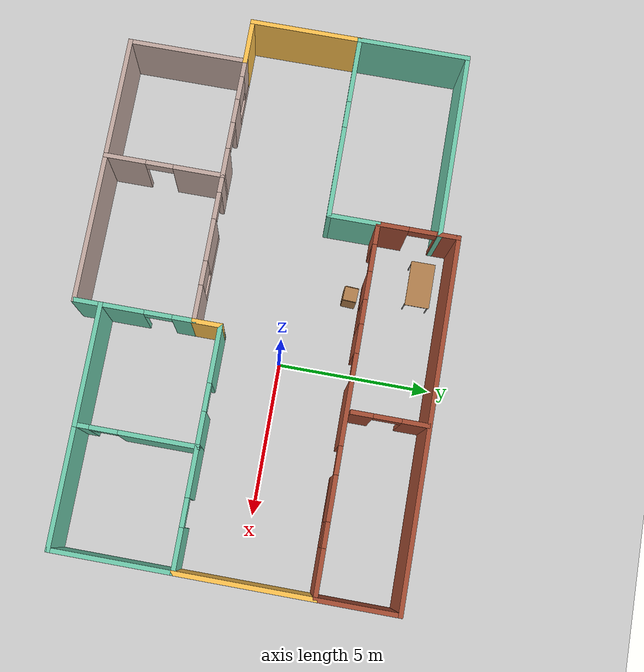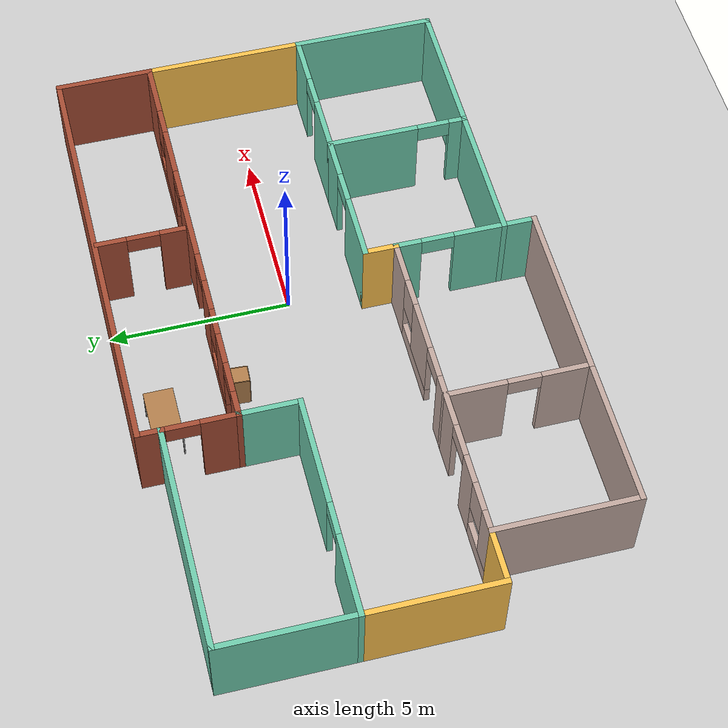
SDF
<sdf version="1.6">
 <world name="default">
  <model name="ground_plane">
   <static>1</static>
   <link name="link">
    <collision name="collision">
     <geometry><plane><normal>0 0 1</normal><size>100 100</size></plane></geometry>
     <surface><friction><ode><mu>100</mu><mu2>50</mu2></ode></friction></surface>
    </collision>
    <visual name="visual">
     <cast_shadows>0</cast_shadows>
     <geometry><plane><normal>0 0 1</normal><size>100 100</size></plane></geometry>
     <material>
      <script><uri>file://media/materials/scripts/gazebo.material</uri><name>Gazebo/Grey</name></script>
     </material>
    </visual>
   </link>
  </model>
  <model name="model_0">
   <pose>-1.81997 -0.88196 0 0 -0 0</pose>
   <link name="Wall_13">
    <pose>-3.575 -3.9 0 0 0 -1.5708</pose>
    <visual name="Wall_13_Visual_0">
     <pose>-1.14969 0 1.25 0 -0 0</pose>
     <geometry><box><size>1.70063 0.15 2.5</size></box></geometry>
     <material>
      <script><uri>file://media/materials/scripts/gazebo.material</uri><name>Gazebo/Grey</name></script>
      <ambient>0.760784 0.662745 0.627451 1</ambient>
     </material>
     <meta><layer>0</layer></meta>
    </visual>
    <collision name="Wall_13_Collision_0">
     <geometry><box><size>1.70063 0.15 2.5</size></box></geometry>
     <pose>-1.14969 0 1.25 0 -0 0</pose>
    </collision>
    <visual name="Wall_13_Visual_1">
     <pose>1.30032 0 1.25 0 -0 0</pose>
     <geometry><box><size>1.39937 0.15 2.5</size></box></geometry>
     <material>
      <script><uri>file://media/materials/scripts/gazebo.material</uri><name>Gazebo/Grey</name></script>
      <ambient>0.760784 0.662745 0.627451 1</ambient>
     </material>
     <meta><layer>0</layer></meta>
    </visual>
    <collision name="Wall_13_Collision_1">
     <geometry><box><size>1.39937 0.15 2.5</size></box></geometry>
     <pose>1.30032 0 1.25 0 -0 0</pose>
    </collision>
    <visual name="Wall_13_Visual_2">
     <pose>0.15063 0 2.25 0 -0 0</pose>
     <geometry><box><size>0.9 0.15 0.5</size></box></geometry>
     <material>
      <script><uri>file://media/materials/scripts/gazebo.material</uri><name>Gazebo/Grey</name></script>
      <ambient>0.760784 0.662745 0.627451 1</ambient>
     </material>
     <meta><layer>0</layer></meta>
    </visual>
    <collision name="Wall_13_Collision_2">
     <geometry><box><size>0.9 0.15 0.5</size></box></geometry>
     <pose>0.15063 0 2.25 0 -0 0</pose>
    </collision>
   </link>
   <link name="Wall_14">
    <collision name="Wall_14_Collision">
     <geometry><box><size>5 0.15 2.5</size></box></geometry>
     <pose>0 0 1.25 0 -0 0</pose>
    </collision>
    <visual name="Wall_14_Visual">
     <pose>0 0 1.25 0 -0 0</pose>
     <geometry><box><size>5 0.15 2.5</size></box></geometry>
     <material>
      <script><uri>file://media/materials/scripts/gazebo.material</uri><name>Gazebo/Grey</name></script>
      <ambient>0.760784 0.662745 0.627451 1</ambient>
     </material>
     <meta><layer>0</layer></meta>
    </visual>
    <pose>-1.15 -5.825 0 0 -0 0</pose>
   </link>
   <link name="Wall_15">
    <pose>1.275 -3.9 0 0 -0 1.5708</pose>
    <visual name="Wall_15_Visual_0">
     <pose>-0.837703 0 1.25 0 -0 0</pose>
     <geometry><box><size>2.32459 0.15 2.5</size></box></geometry>
     <material>
      <script><uri>file://media/materials/scripts/gazebo.material</uri><name>Gazebo/Grey</name></script>
      <ambient>0.435294 0.796078 0.67451 1</ambient>
     </material>
     <meta><layer>0</layer></meta>
    </visual>
    <collision name="Wall_15_Collision_0">
     <geometry><box><size>2.32459 0.15 2.5</size></box></geometry>
     <pose>-0.837703 0 1.25 0 -0 0</pose>
    </collision>
    <visual name="Wall_15_Visual_1">
     <pose>1.6123 0 1.25 0 -0 0</pose>
     <geometry><box><size>0.775406 0.15 2.5</size></box></geometry>
     <material>
      <script><uri>file://media/materials/scripts/gazebo.material</uri><name>Gazebo/Grey</name></script>
      <ambient>0.435294 0.796078 0.67451 1</ambient>
     </material>
     <meta><layer>0</layer></meta>
    </visual>
    <collision name="Wall_15_Collision_1">
     <geometry><box><size>0.775406 0.15 2.5</size></box></geometry>
     <pose>1.6123 0 1.25 0 -0 0</pose>
    </collision>
    <visual name="Wall_15_Visual_2">
     <pose>0.774594 0 2.25 0 -0 0</pose>
     <geometry><box><size>0.9 0.15 0.5</size></box></geometry>
     <material>
      <script><uri>file://media/materials/scripts/gazebo.material</uri><name>Gazebo/Grey</name></script>
      <ambient>0.435294 0.796078 0.67451 1</ambient>
     </material>
     <meta><layer>0</layer></meta>
    </visual>
    <collision name="Wall_15_Collision_2">
     <geometry><box><size>0.9 0.15 0.5</size></box></geometry>
     <pose>0.774594 0 2.25 0 -0 0</pose>
    </collision>
   </link>
   <link name="Wall_16">
    <pose>-3.15 -1.975 0 0 -0 3.14159</pose>
    <visual name="Wall_16_Visual_0">
     <pose>-3.87671 0 1.25 0 -0 0</pose>
     <geometry><box><size>1.24658 0.15 2.5</size></box></geometry>
     <material>
      <script><uri>file://media/materials/scripts/gazebo.material</uri><name>Gazebo/Grey</name></script>
      <ambient>0.760784 0.662745 0.627451 1</ambient>
     </material>
     <meta><layer>0</layer></meta>
    </visual>
    <collision name="Wall_16_Collision_0">
     <geometry><box><size>1.24658 0.15 2.5</size></box></geometry>
     <pose>-3.87671 0 1.25 0 -0 0</pose>
    </collision>
    <visual name="Wall_16_Visual_1">
     <pose>0.598963 0 1.25 0 -0 0</pose>
     <geometry><box><size>1.50298 0.15 2.5</size></box></geometry>
     <material>
      <script><uri>file://media/materials/scripts/gazebo.material</uri><name>Gazebo/Grey</name></script>
      <ambient>0.760784 0.662745 0.627451 1</ambient>
     </material>
     <meta><layer>0</layer></meta>
    </visual>
    <collision name="Wall_16_Collision_1">
     <geometry><box><size>1.50298 0.15 2.5</size></box></geometry>
     <pose>0.598963 0 1.25 0 -0 0</pose>
    </collision>
    <visual name="Wall_16_Visual_2">
     <pose>2.65433 0 1.25 0 -0 0</pose>
     <geometry><box><size>0.807753 0.15 2.5</size></box></geometry>
     <material>
      <script><uri>file://media/materials/scripts/gazebo.material</uri><name>Gazebo/Grey</name></script>
      <ambient>0.760784 0.662745 0.627451 1</ambient>
     </material>
     <meta><layer>0</layer></meta>
    </visual>
    <collision name="Wall_16_Collision_2">
     <geometry><box><size>0.807753 0.15 2.5</size></box></geometry>
     <pose>2.65433 0 1.25 0 -0 0</pose>
    </collision>
    <visual name="Wall_16_Visual_3">
     <pose>-2.15298 0 0.25 0 -0 0</pose>
     <geometry><box><size>2.2009 0.15 0.5</size></box></geometry>
     <material>
      <script><uri>file://media/materials/scripts/gazebo.material</uri><name>Gazebo/Grey</name></script>
      <ambient>0.760784 0.662745 0.627451 1</ambient>
     </material>
     <meta><layer>0</layer></meta>
    </visual>
    <collision name="Wall_16_Collision_3">
     <geometry><box><size>2.2009 0.15 0.5</size></box></geometry>
     <pose>-2.15298 0 0.25 0 -0 0</pose>
    </collision>
    <visual name="Wall_16_Visual_4">
     <pose>3.7791 0 0.25 0 -0 0</pose>
     <geometry><box><size>1.44179 0.15 0.5</size></box></geometry>
     <material>
      <script><uri>file://media/materials/scripts/gazebo.material</uri><name>Gazebo/Grey</name></script>
      <ambient>0.760784 0.662745 0.627451 1</ambient>
     </material>
     <meta><layer>0</layer></meta>
    </visual>
    <collision name="Wall_16_Collision_4">
     <geometry><box><size>1.44179 0.15 0.5</size></box></geometry>
     <pose>3.7791 0 0.25 0 -0 0</pose>
    </collision>
    <visual name="Wall_16_Visual_5">
     <pose>-1.75298 0 1.5 0 -0 0</pose>
     <geometry><box><size>1.4009 0.15 2</size></box></geometry>
     <material>
      <script><uri>file://media/materials/scripts/gazebo.material</uri><name>Gazebo/Grey</name></script>
      <ambient>0.760784 0.662745 0.627451 1</ambient>
     </material>
     <meta><layer>0</layer></meta>
    </visual>
    <collision name="Wall_16_Collision_5">
     <geometry><box><size>1.4009 0.15 2</size></box></geometry>
     <pose>-1.75298 0 1.5 0 -0 0</pose>
    </collision>
    <visual name="Wall_16_Visual_6">
     <pose>-1.75298 0 1.5 0 -0 0</pose>
     <geometry><box><size>1.4009 0.15 2</size></box></geometry>
     <material>
      <script><uri>file://media/materials/scripts/gazebo.material</uri><name>Gazebo/Grey</name></script>
      <ambient>0.760784 0.662745 0.627451 1</ambient>
     </material>
     <meta><layer>0</layer></meta>
    </visual>
    <collision name="Wall_16_Collision_6">
     <geometry><box><size>1.4009 0.15 2</size></box></geometry>
     <pose>-1.75298 0 1.5 0 -0 0</pose>
    </collision>
    <visual name="Wall_16_Visual_7">
     <pose>4.1791 0 1.5 0 -0 0</pose>
     <geometry><box><size>0.641792 0.15 2</size></box></geometry>
     <material>
      <script><uri>file://media/materials/scripts/gazebo.material</uri><name>Gazebo/Grey</name></script>
      <ambient>0.760784 0.662745 0.627451 1</ambient>
     </material>
     <meta><layer>0</layer></meta>
    </visual>
    <collision name="Wall_16_Collision_7">
     <geometry><box><size>0.641792 0.15 2</size></box></geometry>
     <pose>4.1791 0 1.5 0 -0 0</pose>
    </collision>
    <visual name="Wall_16_Visual_8">
     <pose>-2.85342 0 1.9 0 -0 0</pose>
     <geometry><box><size>0.8 0.15 1.2</size></box></geometry>
     <material>
      <script><uri>file://media/materials/scripts/gazebo.material</uri><name>Gazebo/Grey</name></script>
      <ambient>0.760784 0.662745 0.627451 1</ambient>
     </material>
     <meta><layer>0</layer></meta>
    </visual>
    <collision name="Wall_16_Collision_8">
     <geometry><box><size>0.8 0.15 1.2</size></box></geometry>
     <pose>-2.85342 0 1.9 0 -0 0</pose>
    </collision>
    <visual name="Wall_16_Visual_9">
     <pose>3.45821 0 1.9 0 -0 0</pose>
     <geometry><box><size>0.8 0.15 1.2</size></box></geometry>
     <material>
      <script><uri>file://media/materials/scripts/gazebo.material</uri><name>Gazebo/Grey</name></script>
      <ambient>0.760784 0.662745 0.627451 1</ambient>
     </material>
     <meta><layer>0</layer></meta>
    </visual>
    <collision name="Wall_16_Collision_9">
     <geometry><box><size>0.8 0.15 1.2</size></box></geometry>
     <pose>3.45821 0 1.9 0 -0 0</pose>
    </collision>
    <visual name="Wall_16_Visual_10">
     <pose>1.80045 0 2.25 0 -0 0</pose>
     <geometry><box><size>0.9 0.15 0.5</size></box></geometry>
     <material>
      <script><uri>file://media/materials/scripts/gazebo.material</uri><name>Gazebo/Grey</name></script>
      <ambient>0.760784 0.662745 0.627451 1</ambient>
     </material>
     <meta><layer>0</layer></meta>
    </visual>
    <collision name="Wall_16_Collision_10">
     <geometry><box><size>0.9 0.15 0.5</size></box></geometry>
     <pose>1.80045 0 2.25 0 -0 0</pose>
    </collision>
    <visual name="Wall_16_Visual_11">
     <pose>-0.602528 0 2.25 0 -0 0</pose>
     <geometry><box><size>0.9 0.15 0.5</size></box></geometry>
     <material>
      <script><uri>file://media/materials/scripts/gazebo.material</uri><name>Gazebo/Grey</name></script>
      <ambient>0.760784 0.662745 0.627451 1</ambient>
     </material>
     <meta><layer>0</layer></meta>
    </visual>
    <collision name="Wall_16_Collision_11">
     <geometry><box><size>0.9 0.15 0.5</size></box></geometry>
     <pose>-0.602528 0 2.25 0 -0 0</pose>
    </collision>
    <visual name="Wall_16_Visual_12">
     <pose>-0.602528 0 2.25 0 -0 0</pose>
     <geometry><box><size>0.9 0.15 0.5</size></box></geometry>
     <material>
      <script><uri>file://media/materials/scripts/gazebo.material</uri><name>Gazebo/Grey</name></script>
      <ambient>0.760784 0.662745 0.627451 1</ambient>
     </material>
     <meta><layer>0</layer></meta>
    </visual>
    <collision name="Wall_16_Collision_12">
     <geometry><box><size>0.9 0.15 0.5</size></box></geometry>
     <pose>-0.602528 0 2.25 0 -0 0</pose>
    </collision>
   </link>
   <link name="Wall_17">
    <collision name="Wall_17_Collision">
     <geometry><box><size>4 0.15 2.5</size></box></geometry>
     <pose>0 0 1.25 0 -0 0</pose>
    </collision>
    <visual name="Wall_17_Visual">
     <pose>0 0 1.25 0 -0 0</pose>
     <geometry><box><size>4 0.15 2.5</size></box></geometry>
     <material>
      <script><uri>file://media/materials/scripts/gazebo.material</uri><name>Gazebo/Grey</name></script>
      <ambient>0.760784 0.662745 0.627451 1</ambient>
     </material>
     <meta><layer>0</layer></meta>
    </visual>
    <pose>-7.575 -3.9 0 0 0 -1.5708</pose>
   </link>
   <link name="Wall_18">
    <collision name="Wall_18_Collision">
     <geometry><box><size>4 0.15 2.5</size></box></geometry>
     <pose>0 0 1.25 0 -0 0</pose>
    </collision>
    <visual name="Wall_18_Visual">
     <pose>0 0 1.25 0 -0 0</pose>
     <geometry><box><size>4 0.15 2.5</size></box></geometry>
     <material>
      <script><uri>file://media/materials/scripts/gazebo.material</uri><name>Gazebo/Grey</name></script>
      <ambient>0.760784 0.662745 0.627451 1</ambient>
     </material>
     <meta><layer>0</layer></meta>
    </visual>
    <pose>-5.65 -5.825 0 0 -0 0</pose>
   </link>
   <link name="Wall_27">
    <collision name="Wall_27_Collision">
     <geometry><box><size>1 0.15 2.5</size></box></geometry>
     <pose>0 0 1.25 0 -0 0</pose>
    </collision>
    <visual name="Wall_27_Visual">
     <pose>0 0 1.25 0 -0 0</pose>
     <geometry><box><size>1 0.15 2.5</size></box></geometry>
     <material>
      <script><uri>file://media/materials/scripts/gazebo.material</uri><name>Gazebo/Grey</name></script>
      <ambient>1 0.764706 0.305882 1</ambient>
     </material>
     <meta><layer>0</layer></meta>
    </visual>
    <pose>1.275 -1.55 0 0 -0 1.5708</pose>
   </link>
   <link name="Wall_28">
    <pose>3.2 -1.125 0 0 -0 0</pose>
    <visual name="Wall_28_Visual_0">
     <pose>-1.04345 0 1.25 0 -0 0</pose>
     <geometry><box><size>1.9131 0.15 2.5</size></box></geometry>
     <material>
      <script><uri>file://media/materials/scripts/gazebo.material</uri><name>Gazebo/Grey</name></script>
      <ambient>0.435294 0.796078 0.67451 1</ambient>
     </material>
     <meta><layer>0</layer></meta>
    </visual>
    <collision name="Wall_28_Collision_0">
     <geometry><box><size>1.9131 0.15 2.5</size></box></geometry>
     <pose>-1.04345 0 1.25 0 -0 0</pose>
    </collision>
    <visual name="Wall_28_Visual_1">
     <pose>1.40655 0 1.25 0 -0 0</pose>
     <geometry><box><size>1.1869 0.15 2.5</size></box></geometry>
     <material>
      <script><uri>file://media/materials/scripts/gazebo.material</uri><name>Gazebo/Grey</name></script>
      <ambient>0.435294 0.796078 0.67451 1</ambient>
     </material>
     <meta><layer>0</layer></meta>
    </visual>
    <collision name="Wall_28_Collision_1">
     <geometry><box><size>1.1869 0.15 2.5</size></box></geometry>
     <pose>1.40655 0 1.25 0 -0 0</pose>
    </collision>
    <visual name="Wall_28_Visual_2">
     <pose>0.363098 0 2.25 0 -0 0</pose>
     <geometry><box><size>0.9 0.15 0.5</size></box></geometry>
     <material>
      <script><uri>file://media/materials/scripts/gazebo.material</uri><name>Gazebo/Grey</name></script>
      <ambient>0.435294 0.796078 0.67451 1</ambient>
     </material>
     <meta><layer>0</layer></meta>
    </visual>
    <collision name="Wall_28_Collision_2">
     <geometry><box><size>0.9 0.15 0.5</size></box></geometry>
     <pose>0.363098 0 2.25 0 -0 0</pose>
    </collision>
   </link>
   <link name="Wall_29">
    <pose>5.125 -3.05 0 0 0 -1.5708</pose>
    <visual name="Wall_29_Visual_0">
     <pose>-0.71312 0 1.25 0 -0 0</pose>
     <geometry><box><size>2.57376 0.15 2.5</size></box></geometry>
     <material>
      <script><uri>file://media/materials/scripts/gazebo.material</uri><name>Gazebo/Grey</name></script>
      <ambient>0.435294 0.796078 0.67451 1</ambient>
     </material>
     <meta><layer>0</layer></meta>
    </visual>
    <collision name="Wall_29_Collision_0">
     <geometry><box><size>2.57376 0.15 2.5</size></box></geometry>
     <pose>-0.71312 0 1.25 0 -0 0</pose>
    </collision>
    <visual name="Wall_29_Visual_1">
     <pose>1.73688 0 1.25 0 -0 0</pose>
     <geometry><box><size>0.52624 0.15 2.5</size></box></geometry>
     <material>
      <script><uri>file://media/materials/scripts/gazebo.material</uri><name>Gazebo/Grey</name></script>
      <ambient>0.435294 0.796078 0.67451 1</ambient>
     </material>
     <meta><layer>0</layer></meta>
    </visual>
    <collision name="Wall_29_Collision_1">
     <geometry><box><size>0.52624 0.15 2.5</size></box></geometry>
     <pose>1.73688 0 1.25 0 -0 0</pose>
    </collision>
    <visual name="Wall_29_Visual_2">
     <pose>1.02376 0 2.25 0 -0 0</pose>
     <geometry><box><size>0.9 0.15 0.5</size></box></geometry>
     <material>
      <script><uri>file://media/materials/scripts/gazebo.material</uri><name>Gazebo/Grey</name></script>
      <ambient>0.435294 0.796078 0.67451 1</ambient>
     </material>
     <meta><layer>0</layer></meta>
    </visual>
    <collision name="Wall_29_Collision_2">
     <geometry><box><size>0.9 0.15 0.5</size></box></geometry>
     <pose>1.02376 0 2.25 0 -0 0</pose>
    </collision>
   </link>
   <link name="Wall_30">
    <collision name="Wall_30_Collision">
     <geometry><box><size>4 0.15 2.5</size></box></geometry>
     <pose>0 0 1.25 0 -0 0</pose>
    </collision>
    <visual name="Wall_30_Visual">
     <pose>0 0 1.25 0 -0 0</pose>
     <geometry><box><size>4 0.15 2.5</size></box></geometry>
     <material>
      <script><uri>file://media/materials/scripts/gazebo.material</uri><name>Gazebo/Grey</name></script>
      <ambient>0.435294 0.796078 0.67451 1</ambient>
     </material>
     <meta><layer>0</layer></meta>
    </visual>
    <pose>3.2 -4.975 0 0 -0 3.14159</pose>
   </link>
   <link name="Wall_32">
    <pose>7.05 -1.125 0 0 -0 0</pose>
    <visual name="Wall_32_Visual_0">
     <pose>-1.17583 0 1.25 0 -0 0</pose>
     <geometry><box><size>1.64834 0.15 2.5</size></box></geometry>
     <material>
      <script><uri>file://media/materials/scripts/gazebo.material</uri><name>Gazebo/Grey</name></script>
      <ambient>0.435294 0.796078 0.67451 1</ambient>
     </material>
     <meta><layer>0</layer></meta>
    </visual>
    <collision name="Wall_32_Collision_0">
     <geometry><box><size>1.64834 0.15 2.5</size></box></geometry>
     <pose>-1.17583 0 1.25 0 -0 0</pose>
    </collision>
    <visual name="Wall_32_Visual_1">
     <pose>1.27417 0 1.25 0 -0 0</pose>
     <geometry><box><size>1.45166 0.15 2.5</size></box></geometry>
     <material>
      <script><uri>file://media/materials/scripts/gazebo.material</uri><name>Gazebo/Grey</name></script>
      <ambient>0.435294 0.796078 0.67451 1</ambient>
     </material>
     <meta><layer>0</layer></meta>
    </visual>
    <collision name="Wall_32_Collision_1">
     <geometry><box><size>1.45166 0.15 2.5</size></box></geometry>
     <pose>1.27417 0 1.25 0 -0 0</pose>
    </collision>
    <visual name="Wall_32_Visual_2">
     <pose>0.098342 0 2.25 0 -0 0</pose>
     <geometry><box><size>0.9 0.15 0.5</size></box></geometry>
     <material>
      <script><uri>file://media/materials/scripts/gazebo.material</uri><name>Gazebo/Grey</name></script>
      <ambient>0.435294 0.796078 0.67451 1</ambient>
     </material>
     <meta><layer>0</layer></meta>
    </visual>
    <collision name="Wall_32_Collision_2">
     <geometry><box><size>0.9 0.15 0.5</size></box></geometry>
     <pose>0.098342 0 2.25 0 -0 0</pose>
    </collision>
   </link>
   <link name="Wall_33">
    <collision name="Wall_33_Collision">
     <geometry><box><size>4 0.15 2.5</size></box></geometry>
     <pose>0 0 1.25 0 -0 0</pose>
    </collision>
    <visual name="Wall_33_Visual">
     <pose>0 0 1.25 0 -0 0</pose>
     <geometry><box><size>4 0.15 2.5</size></box></geometry>
     <material>
      <script><uri>file://media/materials/scripts/gazebo.material</uri><name>Gazebo/Grey</name></script>
      <ambient>0.435294 0.796078 0.67451 1</ambient>
     </material>
     <meta><layer>0</layer></meta>
    </visual>
    <pose>8.975 -3.05 0 0 0 -1.5708</pose>
   </link>
   <link name="Wall_34">
    <collision name="Wall_34_Collision">
     <geometry><box><size>4 0.15 2.5</size></box></geometry>
     <pose>0 0 1.25 0 -0 0</pose>
    </collision>
    <visual name="Wall_34_Visual">
     <pose>0 0 1.25 0 -0 0</pose>
     <geometry><box><size>4 0.15 2.5</size></box></geometry>
     <material>
      <script><uri>file://media/materials/scripts/gazebo.material</uri><name>Gazebo/Grey</name></script>
      <ambient>0.435294 0.796078 0.67451 1</ambient>
     </material>
     <meta><layer>0</layer></meta>
    </visual>
    <pose>7.05 -4.975 0 0 -0 3.14159</pose>
   </link>
   <link name="Wall_36">
    <collision name="Wall_36_Collision">
     <geometry><box><size>4.5 0.15 2.5</size></box></geometry>
     <pose>0 0 1.25 0 -0 0</pose>
    </collision>
    <visual name="Wall_36_Visual">
     <pose>0 0 1.25 0 -0 0</pose>
     <geometry><box><size>4.5 0.15 2.5</size></box></geometry>
     <material>
      <script><uri>file://media/materials/scripts/gazebo.material</uri><name>Gazebo/Grey</name></script>
      <ambient>1 0.764706 0.305882 1</ambient>
     </material>
     <meta><layer>0</layer></meta>
    </visual>
    <pose>8.975 1.05 0 0 -0 1.5708</pose>
   </link>
   <link name="Wall_37">
    <pose>3.05 3.225 0 0 -0 3.14159</pose>
    <visual name="Wall_37_Visual_0">
     <pose>-5.19543 0 1.25 0 -0 0</pose>
     <geometry><box><size>1.60914 0.15 2.5</size></box></geometry>
     <material>
      <script><uri>file://media/materials/scripts/gazebo.material</uri><name>Gazebo/Bricks</name></script>
      <ambient>0.996078 0.47451 0.0196078 1</ambient>
     </material>
     <meta><layer>0</layer></meta>
    </visual>
    <collision name="Wall_37_Collision_0">
     <geometry><box><size>1.60914 0.15 2.5</size></box></geometry>
     <pose>-5.19543 0 1.25 0 -0 0</pose>
    </collision>
    <visual name="Wall_37_Visual_1">
     <pose>-0.241571 0 1.25 0 -0 0</pose>
     <geometry><box><size>2.02272 0.15 2.5</size></box></geometry>
     <material>
      <script><uri>file://media/materials/scripts/gazebo.material</uri><name>Gazebo/Bricks</name></script>
      <ambient>0.996078 0.47451 0.0196078 1</ambient>
     </material>
     <meta><layer>0</layer></meta>
    </visual>
    <collision name="Wall_37_Collision_1">
     <geometry><box><size>2.02272 0.15 2.5</size></box></geometry>
     <pose>-0.241571 0 1.25 0 -0 0</pose>
    </collision>
    <visual name="Wall_37_Visual_2">
     <pose>2.14409 0 1.25 0 -0 0</pose>
     <geometry><box><size>0.9486 0.15 2.5</size></box></geometry>
     <material>
      <script><uri>file://media/materials/scripts/gazebo.material</uri><name>Gazebo/Bricks</name></script>
      <ambient>0.996078 0.47451 0.0196078 1</ambient>
     </material>
     <meta><layer>0</layer></meta>
    </visual>
    <collision name="Wall_37_Collision_2">
     <geometry><box><size>0.9486 0.15 2.5</size></box></geometry>
     <pose>2.14409 0 1.25 0 -0 0</pose>
    </collision>
    <visual name="Wall_37_Visual_3">
     <pose>5.62027 0 1.25 0 -0 0</pose>
     <geometry><box><size>0.759458 0.15 2.5</size></box></geometry>
     <material>
      <script><uri>file://media/materials/scripts/gazebo.material</uri><name>Gazebo/Bricks</name></script>
      <ambient>0.996078 0.47451 0.0196078 1</ambient>
     </material>
     <meta><layer>0</layer></meta>
    </visual>
    <collision name="Wall_37_Collision_3">
     <geometry><box><size>0.759458 0.15 2.5</size></box></geometry>
     <pose>5.62027 0 1.25 0 -0 0</pose>
    </collision>
    <visual name="Wall_37_Visual_4">
     <pose>-3.2719 0 0.25 0 -0 0</pose>
     <geometry><box><size>2.23793 0.15 0.5</size></box></geometry>
     <material>
      <script><uri>file://media/materials/scripts/gazebo.material</uri><name>Gazebo/Bricks</name></script>
      <ambient>0.996078 0.47451 0.0196078 1</ambient>
     </material>
     <meta><layer>0</layer></meta>
    </visual>
    <collision name="Wall_37_Collision_4">
     <geometry><box><size>2.23793 0.15 0.5</size></box></geometry>
     <pose>-3.2719 0 0.25 0 -0 0</pose>
    </collision>
    <visual name="Wall_37_Visual_5">
     <pose>3.47947 0 0.25 0 -0 0</pose>
     <geometry><box><size>1.72215 0.15 0.5</size></box></geometry>
     <material>
      <script><uri>file://media/materials/scripts/gazebo.material</uri><name>Gazebo/Bricks</name></script>
      <ambient>0.996078 0.47451 0.0196078 1</ambient>
     </material>
     <meta><layer>0</layer></meta>
    </visual>
    <collision name="Wall_37_Collision_5">
     <geometry><box><size>1.72215 0.15 0.5</size></box></geometry>
     <pose>3.47947 0 0.25 0 -0 0</pose>
    </collision>
    <visual name="Wall_37_Visual_6">
     <pose>-2.8719 0 1.5 0 -0 0</pose>
     <geometry><box><size>1.43792 0.15 2</size></box></geometry>
     <material>
      <script><uri>file://media/materials/scripts/gazebo.material</uri><name>Gazebo/Bricks</name></script>
      <ambient>0.996078 0.47451 0.0196078 1</ambient>
     </material>
     <meta><layer>0</layer></meta>
    </visual>
    <collision name="Wall_37_Collision_6">
     <geometry><box><size>1.43792 0.15 2</size></box></geometry>
     <pose>-2.8719 0 1.5 0 -0 0</pose>
    </collision>
    <visual name="Wall_37_Visual_7">
     <pose>-2.8719 0 1.5 0 -0 0</pose>
     <geometry><box><size>1.43792 0.15 2</size></box></geometry>
     <material>
      <script><uri>file://media/materials/scripts/gazebo.material</uri><name>Gazebo/Bricks</name></script>
      <ambient>0.996078 0.47451 0.0196078 1</ambient>
     </material>
     <meta><layer>0</layer></meta>
    </visual>
    <collision name="Wall_37_Collision_7">
     <geometry><box><size>1.43792 0.15 2</size></box></geometry>
     <pose>-2.8719 0 1.5 0 -0 0</pose>
    </collision>
    <visual name="Wall_37_Visual_8">
     <pose>3.87947 0 1.5 0 -0 0</pose>
     <geometry><box><size>0.92215 0.15 2</size></box></geometry>
     <material>
      <script><uri>file://media/materials/scripts/gazebo.material</uri><name>Gazebo/Bricks</name></script>
      <ambient>0.996078 0.47451 0.0196078 1</ambient>
     </material>
     <meta><layer>0</layer></meta>
    </visual>
    <collision name="Wall_37_Collision_8">
     <geometry><box><size>0.92215 0.15 2</size></box></geometry>
     <pose>3.87947 0 1.5 0 -0 0</pose>
    </collision>
    <visual name="Wall_37_Visual_9">
     <pose>-3.99086 0 1.9 0 -0 0</pose>
     <geometry><box><size>0.8 0.15 1.2</size></box></geometry>
     <material>
      <script><uri>file://media/materials/scripts/gazebo.material</uri><name>Gazebo/Bricks</name></script>
      <ambient>0.996078 0.47451 0.0196078 1</ambient>
     </material>
     <meta><layer>0</layer></meta>
    </visual>
    <collision name="Wall_37_Collision_9">
     <geometry><box><size>0.8 0.15 1.2</size></box></geometry>
     <pose>-3.99086 0 1.9 0 -0 0</pose>
    </collision>
    <visual name="Wall_37_Visual_10">
     <pose>3.01839 0 1.9 0 -0 0</pose>
     <geometry><box><size>0.8 0.15 1.2</size></box></geometry>
     <material>
      <script><uri>file://media/materials/scripts/gazebo.material</uri><name>Gazebo/Bricks</name></script>
      <ambient>0.996078 0.47451 0.0196078 1</ambient>
     </material>
     <meta><layer>0</layer></meta>
    </visual>
    <collision name="Wall_37_Collision_10">
     <geometry><box><size>0.8 0.15 1.2</size></box></geometry>
     <pose>3.01839 0 1.9 0 -0 0</pose>
    </collision>
    <visual name="Wall_37_Visual_11">
     <pose>1.21979 0 2.25 0 -0 0</pose>
     <geometry><box><size>0.9 0.15 0.5</size></box></geometry>
     <material>
      <script><uri>file://media/materials/scripts/gazebo.material</uri><name>Gazebo/Bricks</name></script>
      <ambient>0.996078 0.47451 0.0196078 1</ambient>
     </material>
     <meta><layer>0</layer></meta>
    </visual>
    <collision name="Wall_37_Collision_11">
     <geometry><box><size>0.9 0.15 0.5</size></box></geometry>
     <pose>1.21979 0 2.25 0 -0 0</pose>
    </collision>
    <visual name="Wall_37_Visual_12">
     <pose>-1.70293 0 2.25 0 -0 0</pose>
     <geometry><box><size>0.9 0.15 0.5</size></box></geometry>
     <material>
      <script><uri>file://media/materials/scripts/gazebo.material</uri><name>Gazebo/Bricks</name></script>
      <ambient>0.996078 0.47451 0.0196078 1</ambient>
     </material>
     <meta><layer>0</layer></meta>
    </visual>
    <collision name="Wall_37_Collision_12">
     <geometry><box><size>0.9 0.15 0.5</size></box></geometry>
     <pose>-1.70293 0 2.25 0 -0 0</pose>
    </collision>
    <visual name="Wall_37_Visual_13">
     <pose>-1.70293 0 2.25 0 -0 0</pose>
     <geometry><box><size>0.9 0.15 0.5</size></box></geometry>
     <material>
      <script><uri>file://media/materials/scripts/gazebo.material</uri><name>Gazebo/Bricks</name></script>
      <ambient>0.996078 0.47451 0.0196078 1</ambient>
     </material>
     <meta><layer>0</layer></meta>
    </visual>
    <collision name="Wall_37_Collision_13">
     <geometry><box><size>0.9 0.15 0.5</size></box></geometry>
     <pose>-1.70293 0 2.25 0 -0 0</pose>
    </collision>
    <visual name="Wall_37_Visual_14">
     <pose>4.79054 0 2.25 0 -0 0</pose>
     <geometry><box><size>0.9 0.15 0.5</size></box></geometry>
     <material>
      <script><uri>file://media/materials/scripts/gazebo.material</uri><name>Gazebo/Bricks</name></script>
      <ambient>0.996078 0.47451 0.0196078 1</ambient>
     </material>
     <meta><layer>0</layer></meta>
    </visual>
    <collision name="Wall_37_Collision_14">
     <geometry><box><size>0.9 0.15 0.5</size></box></geometry>
     <pose>4.79054 0 2.25 0 -0 0</pose>
    </collision>
   </link>
   <link name="Wall_38">
    <pose>-2.875 4.525 0 0 -0 1.5708</pose>
    <visual name="Wall_38_Visual_0">
     <pose>-0.840195 0 1.25 0 -0 0</pose>
     <geometry><box><size>1.06961 0.15 2.5</size></box></geometry>
     <material>
      <script><uri>file://media/materials/scripts/gazebo.material</uri><name>Gazebo/Bricks</name></script>
      <ambient>0.996078 0.47451 0.0196078 1</ambient>
     </material>
     <meta><layer>0</layer></meta>
    </visual>
    <collision name="Wall_38_Collision_0">
     <geometry><box><size>1.06961 0.15 2.5</size></box></geometry>
     <pose>-0.840195 0 1.25 0 -0 0</pose>
    </collision>
    <visual name="Wall_38_Visual_1">
     <pose>0.984805 0 1.25 0 -0 0</pose>
     <geometry><box><size>0.780391 0.15 2.5</size></box></geometry>
     <material>
      <script><uri>file://media/materials/scripts/gazebo.material</uri><name>Gazebo/Bricks</name></script>
      <ambient>0.996078 0.47451 0.0196078 1</ambient>
     </material>
     <meta><layer>0</layer></meta>
    </visual>
    <collision name="Wall_38_Collision_1">
     <geometry><box><size>0.780391 0.15 2.5</size></box></geometry>
     <pose>0.984805 0 1.25 0 -0 0</pose>
    </collision>
    <visual name="Wall_38_Visual_2">
     <pose>0.144609 0 2.25 0 -0 0</pose>
     <geometry><box><size>0.9 0.15 0.5</size></box></geometry>
     <material>
      <script><uri>file://media/materials/scripts/gazebo.material</uri><name>Gazebo/Bricks</name></script>
      <ambient>0.996078 0.47451 0.0196078 1</ambient>
     </material>
     <meta><layer>0</layer></meta>
    </visual>
    <collision name="Wall_38_Collision_2">
     <geometry><box><size>0.9 0.15 0.5</size></box></geometry>
     <pose>0.144609 0 2.25 0 -0 0</pose>
    </collision>
   </link>
   <link name="Wall_39">
    <collision name="Wall_39_Collision">
     <geometry><box><size>12 0.15 2.5</size></box></geometry>
     <pose>0 0 1.25 0 -0 0</pose>
    </collision>
    <visual name="Wall_39_Visual">
     <pose>0 0 1.25 0 -0 0</pose>
     <geometry><box><size>12 0.15 2.5</size></box></geometry>
     <material>
      <script><uri>file://media/materials/scripts/gazebo.material</uri><name>Gazebo/Bricks</name></script>
      <ambient>0.996078 0.47451 0.0196078 1</ambient>
     </material>
     <meta><layer>0</layer></meta>
    </visual>
    <pose>3.05 5.825 0 0 -0 0</pose>
   </link>
   <link name="Wall_40">
    <collision name="Wall_40_Collision">
     <geometry><box><size>2.75 0.15 2.5</size></box></geometry>
     <pose>0 0 1.25 0 -0 0</pose>
    </collision>
    <visual name="Wall_40_Visual">
     <pose>0 0 1.25 0 -0 0</pose>
     <geometry><box><size>2.75 0.15 2.5</size></box></geometry>
     <material>
      <script><uri>file://media/materials/scripts/gazebo.material</uri><name>Gazebo/Bricks</name></script>
      <ambient>0.996078 0.47451 0.0196078 1</ambient>
     </material>
     <meta><layer>0</layer></meta>
    </visual>
    <pose>8.975 4.525 0 0 0 -1.5708</pose>
   </link>
   <link name="Wall_42">
    <pose>3.21723 4.58403 0 0 0 -1.5708</pose>
    <visual name="Wall_42_Visual_0">
     <pose>-0.811834 0 1.25 0 -0 0</pose>
     <geometry><box><size>0.876332 0.15 2.5</size></box></geometry>
     <material>
      <script><uri>file://media/materials/scripts/gazebo.material</uri><name>Gazebo/Bricks</name></script>
      <ambient>0.996078 0.47451 0.0196078 1</ambient>
     </material>
     <meta><layer>0</layer></meta>
    </visual>
    <collision name="Wall_42_Collision_0">
     <geometry><box><size>0.876332 0.15 2.5</size></box></geometry>
     <pose>-0.811834 0 1.25 0 -0 0</pose>
    </collision>
    <visual name="Wall_42_Visual_1">
     <pose>0.888166 0 1.25 0 -0 0</pose>
     <geometry><box><size>0.723668 0.15 2.5</size></box></geometry>
     <material>
      <script><uri>file://media/materials/scripts/gazebo.material</uri><name>Gazebo/Bricks</name></script>
      <ambient>0.996078 0.47451 0.0196078 1</ambient>
     </material>
     <meta><layer>0</layer></meta>
    </visual>
    <collision name="Wall_42_Collision_1">
     <geometry><box><size>0.723668 0.15 2.5</size></box></geometry>
     <pose>0.888166 0 1.25 0 -0 0</pose>
    </collision>
    <visual name="Wall_42_Visual_2">
     <pose>0.076332 0 2.25 0 -0 0</pose>
     <geometry><box><size>0.9 0.15 0.5</size></box></geometry>
     <material>
      <script><uri>file://media/materials/scripts/gazebo.material</uri><name>Gazebo/Bricks</name></script>
      <ambient>0.996078 0.47451 0.0196078 1</ambient>
     </material>
     <meta><layer>0</layer></meta>
    </visual>
    <collision name="Wall_42_Collision_2">
     <geometry><box><size>0.9 0.15 0.5</size></box></geometry>
     <pose>0.076332 0 2.25 0 -0 0</pose>
    </collision>
   </link>
   <link name="Wall_44">
    <collision name="Wall_44_Collision">
     <geometry><box><size>1.75 0.15 2.5</size></box></geometry>
     <pose>0 0 1.25 0 -0 0</pose>
    </collision>
    <visual name="Wall_44_Visual">
     <pose>0 0 1.25 0 -0 0</pose>
     <geometry><box><size>1.75 0.15 2.5</size></box></geometry>
     <material>
      <script><uri>file://media/materials/scripts/gazebo.material</uri><name>Gazebo/Grey</name></script>
      <ambient>0.435294 0.796078 0.67451 1</ambient>
     </material>
     <meta><layer>0</layer></meta>
    </visual>
    <pose>-2.875 2.425 0 0 0 -1.5708</pose>
   </link>
   <link name="Wall_45">
    <pose>-5.925 1.625 0 0 -0 3.14159</pose>
    <visual name="Wall_45_Visual_0">
     <pose>-1.5816 0 1.25 0 -0 0</pose>
     <geometry><box><size>3.0868 0.15 2.5</size></box></geometry>
     <material>
      <script><uri>file://media/materials/scripts/gazebo.material</uri><name>Gazebo/Grey</name></script>
      <ambient>0.435294 0.796078 0.67451 1</ambient>
     </material>
     <meta><layer>0</layer></meta>
    </visual>
    <collision name="Wall_45_Collision_0">
     <geometry><box><size>3.0868 0.15 2.5</size></box></geometry>
     <pose>-1.5816 0 1.25 0 -0 0</pose>
    </collision>
    <visual name="Wall_45_Visual_1">
     <pose>1.9934 0 1.25 0 -0 0</pose>
     <geometry><box><size>2.2632 0.15 2.5</size></box></geometry>
     <material>
      <script><uri>file://media/materials/scripts/gazebo.material</uri><name>Gazebo/Grey</name></script>
      <ambient>0.435294 0.796078 0.67451 1</ambient>
     </material>
     <meta><layer>0</layer></meta>
    </visual>
    <collision name="Wall_45_Collision_1">
     <geometry><box><size>2.2632 0.15 2.5</size></box></geometry>
     <pose>1.9934 0 1.25 0 -0 0</pose>
    </collision>
    <visual name="Wall_45_Visual_2">
     <pose>0.411802 0 2.25 0 -0 0</pose>
     <geometry><box><size>0.9 0.15 0.5</size></box></geometry>
     <material>
      <script><uri>file://media/materials/scripts/gazebo.material</uri><name>Gazebo/Grey</name></script>
      <ambient>0.435294 0.796078 0.67451 1</ambient>
     </material>
     <meta><layer>0</layer></meta>
    </visual>
    <collision name="Wall_45_Collision_2">
     <geometry><box><size>0.9 0.15 0.5</size></box></geometry>
     <pose>0.411802 0 2.25 0 -0 0</pose>
    </collision>
   </link>
   <link name="Wall_46">
    <collision name="Wall_46_Collision">
     <geometry><box><size>3.75 0.15 2.5</size></box></geometry>
     <pose>0 0 1.25 0 -0 0</pose>
    </collision>
    <visual name="Wall_46_Visual">
     <pose>0 0 1.25 0 -0 0</pose>
     <geometry><box><size>3.75 0.15 2.5</size></box></geometry>
     <material>
      <script><uri>file://media/materials/scripts/gazebo.material</uri><name>Gazebo/Grey</name></script>
      <ambient>0.435294 0.796078 0.67451 1</ambient>
     </material>
     <meta><layer>0</layer></meta>
    </visual>
    <pose>-8.975 3.425 0 0 -0 1.5708</pose>
   </link>
   <link name="Wall_47">
    <collision name="Wall_47_Collision">
     <geometry><box><size>6.25 0.15 2.5</size></box></geometry>
     <pose>0 0 1.25 0 -0 0</pose>
    </collision>
    <visual name="Wall_47_Visual">
     <pose>0 0 1.25 0 -0 0</pose>
     <geometry><box><size>6.25 0.15 2.5</size></box></geometry>
     <material>
      <script><uri>file://media/materials/scripts/gazebo.material</uri><name>Gazebo/Grey</name></script>
      <ambient>0.435294 0.796078 0.67451 1</ambient>
     </material>
     <meta><layer>0</layer></meta>
    </visual>
    <pose>-5.925 5.225 0 0 -0 0</pose>
   </link>
   <link name="Wall_49">
    <collision name="Wall_49_Collision">
     <geometry><box><size>3.75 0.15 2.5</size></box></geometry>
     <pose>0 0 1.25 0 -0 0</pose>
    </collision>
    <visual name="Wall_49_Visual">
     <pose>0 0 1.25 0 -0 0</pose>
     <geometry><box><size>3.75 0.15 2.5</size></box></geometry>
     <material>
      <script><uri>file://media/materials/scripts/gazebo.material</uri><name>Gazebo/Grey</name></script>
      <ambient>1 0.764706 0.305882 1</ambient>
     </material>
     <meta><layer>0</layer></meta>
    </visual>
    <pose>-8.975 -0.175 0 0 0 -1.5708</pose>
   </link>
   <link name="Wall_50">
    <collision name="Wall_50_Collision">
     <geometry><box><size>1.55 0.15 2.5</size></box></geometry>
     <pose>0 0 1.25 0 -0 0</pose>
    </collision>
    <visual name="Wall_50_Visual">
     <pose>0 0 1.25 0 -0 0</pose>
     <geometry><box><size>1.55 0.15 2.5</size></box></geometry>
     <material>
      <script><uri>file://media/materials/scripts/gazebo.material</uri><name>Gazebo/Grey</name></script>
      <ambient>1 0.764706 0.305882 1</ambient>
     </material>
     <meta><layer>0</layer></meta>
    </visual>
    <pose>-8.275 -1.975 0 0 -0 0</pose>
   </link>
   <static>1</static>
  </model>
  <model name="table">
   <static>1</static>
   <link name="link">
    <collision name="surface">
     <pose>0 0 1 0 -0 0</pose>
     <geometry><box><size>1.5 0.8 0.03</size></box></geometry>
     <surface><friction><ode><mu>0.6</mu><mu2>0.6</mu2></ode></friction></surface>
    </collision>
    <visual name="visual1">
     <pose>0 0 1 0 -0 0</pose>
     <geometry><box><size>1.5 0.8 0.03</size></box></geometry>
     <material>
      <script><uri>file://media/materials/scripts/gazebo.material</uri><name>Gazebo/Wood</name></script>
     </material>
    </visual>
    <collision name="front_left_leg">
     <pose>0.68 0.38 0.5 0 -0 0</pose>
     <geometry><cylinder><radius>0.02</radius><length>1</length></cylinder></geometry>
    </collision>
    <visual name="front_left_leg">
     <pose>0.68 0.38 0.5 0 -0 0</pose>
     <geometry><cylinder><radius>0.02</radius><length>1</length></cylinder></geometry>
     <material>
      <script><uri>file://media/materials/scripts/gazebo.material</uri><name>Gazebo/Grey</name></script>
     </material>
    </visual>
    <collision name="front_right_leg">
     <pose>0.68 -0.38 0.5 0 -0 0</pose>
     <geometry><cylinder><radius>0.02</radius><length>1</length></cylinder></geometry>
    </collision>
    <visual name="front_right_leg">
     <pose>0.68 -0.38 0.5 0 -0 0</pose>
     <geometry><cylinder><radius>0.02</radius><length>1</length></cylinder></geometry>
     <material>
      <script><uri>file://media/materials/scripts/gazebo.material</uri><name>Gazebo/Grey</name></script>
     </material>
    </visual>
    <collision name="back_right_leg">
     <pose>-0.68 -0.38 0.5 0 -0 0</pose>
     <geometry><cylinder><radius>0.02</radius><length>1</length></cylinder></geometry>
    </collision>
    <visual name="back_right_leg">
     <pose>-0.68 -0.38 0.5 0 -0 0</pose>
     <geometry><cylinder><radius>0.02</radius><length>1</length></cylinder></geometry>
     <material>
      <script><uri>file://media/materials/scripts/gazebo.material</uri><name>Gazebo/Grey</name></script>
     </material>
    </visual>
    <collision name="back_left_leg">
     <pose>-0.68 0.38 0.5 0 -0 0</pose>
     <geometry><cylinder><radius>0.02</radius><length>1</length></cylinder></geometry>
    </collision>
    <visual name="back_left_leg">
     <pose>-0.68 0.38 0.5 0 -0 0</pose>
     <geometry><cylinder><radius>0.02</radius><length>1</length></cylinder></geometry>
     <material>
      <script><uri>file://media/materials/scripts/gazebo.material</uri><name>Gazebo/Grey</name></script>
     </material>
    </visual>
   </link>
   <pose>-3.31934 4.10457 0 0 -0 0</pose>
  </model>
  <model name="cabinet_clone_clone_2">
   <static>1</static>
   <link name="cabinet_bottom_plate">
    <inertial>
     <pose>0 0 -1 0 -0 0</pose>
     <inertia><ixx>2.05</ixx><ixy>0</ixy><ixz>0</ixz><iyy>2.05</iyy><iyz>0</iyz><izz>2.05</izz></inertia>
     <mass>25</mass>
    </inertial>
    <collision name="cabinet_bottom_plate_geom">
     <pose>0 0 0.01 0 -0 0</pose>
     <geometry><box><size>0.45 0.45 0.02</size></box></geometry>
    </collision>
    <visual name="cabinet_bottom_plate_geom_visual">
     <pose>0 0 0.01 0 -0 0</pose>
     <geometry><box><size>0.45 0.45 0.02</size></box></geometry>
     <material>
      <script><uri>file://media/materials/scripts/gazebo.material</uri><name>Gazebo/Wood</name></script>
     </material>
    </visual>
    <collision name="cabinet_bottom_plate_geom_cabinet_back_plate">
     <pose>0.235 0 0.51 0 -0 0</pose>
     <geometry><box><size>0.02 0.45 1.02</size></box></geometry>
    </collision>
    <visual name="cabinet_bottom_plate_geom_cabinet_back_plate_visual">
     <pose>0.235 0 0.51 0 -0 0</pose>
     <geometry><box><size>0.02 0.45 1.02</size></box></geometry>
     <material>
      <script><uri>file://media/materials/scripts/gazebo.material</uri><name>Gazebo/Wood</name></script>
     </material>
    </visual>
    <collision name="cabinet_bottom_plate_geom_cabinet_left_plate">
     <pose>0 0.235 0.51 0 -0 0</pose>
     <geometry><box><size>0.45 0.02 1.02</size></box></geometry>
    </collision>
    <visual name="cabinet_bottom_plate_geom_cabinet_left_plate_visual">
     <pose>0 0.235 0.51 0 -0 0</pose>
     <geometry><box><size>0.45 0.02 1.02</size></box></geometry>
     <material>
      <script><uri>file://media/materials/scripts/gazebo.material</uri><name>Gazebo/Wood</name></script>
     </material>
    </visual>
    <collision name="cabinet_bottom_plate_geom_cabinet_middle_plate">
     <pose>0 0 0.51 0 -0 0</pose>
     <geometry><box><size>0.45 0.45 0.02</size></box></geometry>
    </collision>
    <visual name="cabinet_bottom_plate_geom_cabinet_middle_plate_visual">
     <pose>0 0 0.51 0 -0 0</pose>
     <geometry><box><size>0.45 0.45 0.02</size></box></geometry>
     <material>
      <script><uri>file://media/materials/scripts/gazebo.material</uri><name>Gazebo/Wood</name></script>
     </material>
    </visual>
    <collision name="cabinet_bottom_plate_geom_cabinet_right_plate">
     <pose>0 -0.235 0.51 0 -0 0</pose>
     <geometry><box><size>0.45 0.02 1.02</size></box></geometry>
    </collision>
    <visual name="cabinet_bottom_plate_geom_cabinet_right_plate_visual">
     <pose>0 -0.235 0.51 0 -0 0</pose>
     <geometry><box><size>0.45 0.02 1.02</size></box></geometry>
     <material>
      <script><uri>file://media/materials/scripts/gazebo.material</uri><name>Gazebo/Wood</name></script>
     </material>
    </visual>
    <collision name="cabinet_bottom_plate_geom_cabinet_top_plate">
     <pose>0 0 1.01 0 -0 0</pose>
     <geometry><box><size>0.45 0.45 0.02</size></box></geometry>
    </collision>
    <visual name="cabinet_bottom_plate_geom_cabinet_top_plate_visual">
     <pose>0 0 1.01 0 -0 0</pose>
     <geometry><box><size>0.45 0.45 0.02</size></box></geometry>
     <material>
      <script><uri>file://media/materials/scripts/gazebo.material</uri><name>Gazebo/Wood</name></script>
     </material>
    </visual>
   </link>
   <pose>-2.59543 1.9105 0 0 0 -1.62204</pose>
  </model>
 </world>
</sdf>
